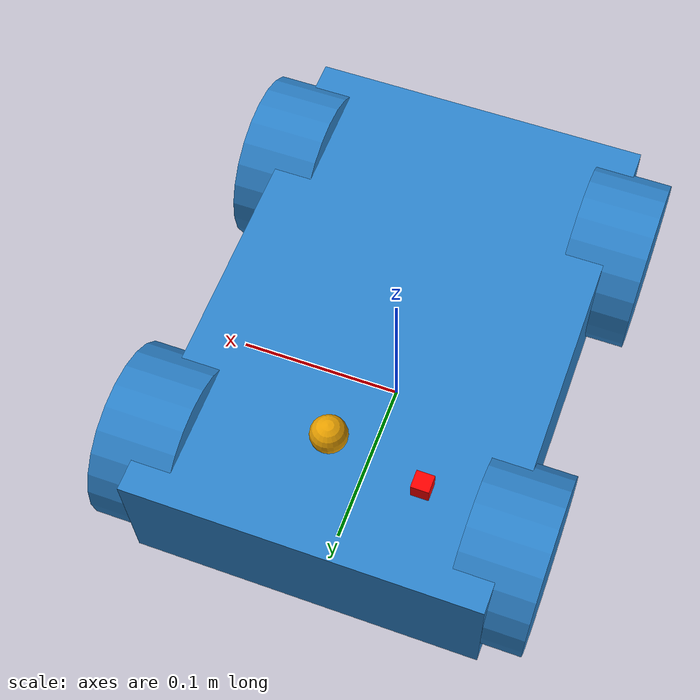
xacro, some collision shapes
<?xml version="1.0" encoding="UTF-8"?>
<robot xmlns:xacro="http://www.ros.org/wiki/xacro" name="rc_car_xacro">
	<include filename="$(find rc_car_simulation)/urdf/rc_car_gazebo.xacro"/>
	<include filename="$(find rc_car_simulation)/urdf/rc_car_constants_macros.xacro"/>
	<!--Base and chassis-->
	<link name="chassis"/>
	<link name="base_link">
		<visual>
			<geometry>
				<box size="0.2 .3 .075"/>
			</geometry>
			<origin rpy="0 0 0" xyz="0 0 0"/>
			<material name="blue">
				<color rgba="44 130 201 1"/>
			</material>
		</visual>
		<inertial>
			<origin xyz="0 0 0" rpy="0 0 0"/>
			<mass value="4.0"/>
			<inertia ixx="0.031875" ixy="0.0" ixz="0.0" iyy="0.015208" iyz="0.0" izz="0.04333"/>
		</inertial>
	</link>
	<joint name="base_link_joint" type="fixed">
		<origin xyz="0 0 0.06" rpy="0 0 0"/>
		<parent link="chassis"/>
		<child link="base_link"/>
	</joint>

	<!--Left front wheel -->
	<link name="left_front_wheel">
		<visual>
			<geometry>
				<cylinder length="${length_wheel}" radius="${radius_wheel}"/>
			</geometry>
			<origin rpy="0 0 0" xyz="0 0 0"/>
			<material name="blue"/>
		</visual>
		<collision>
			<origin xyz="0 0 0" rpy="0 0 0"/>
			<geometry>
				<cylinder length="${length_wheel}" radius="${radius_wheel}"/>
			</geometry>
		</collision>
		<inertial>
			<origin xyz="0 0 0" rpy="0 0 0"/>
			<mass value="0.34055"/>
			<inertia ixx="0.0004256875" ixy="0.0" ixz="0.0" iyy="0.0002128437" iyz="0.0" izz="0.0002128437"/>
		</inertial>
	</link>
	<joint name="chassis_to_left_front_wheel" type="continuous">
		<axis xyz="0 0 -1"/>
		<parent link="left_steering_hinge"/>
		<child link="left_front_wheel"/>
		<origin xyz="0 0 0" rpy="0 1.5708 0"/>
		<limit velocity="100.0" effort="10.0"/>
	</joint>
	<transmission name="trans1">
    		<type>transmission_interface/SimpleTransmission</type>
    		<joint name="chassis_to_left_front_wheel">
      			<hardwareInterface>EffortJointInterface</hardwareInterface>
    		</joint>
    		<actuator name="motor1">
      			<hardwareInterface>EffortJointInterface</hardwareInterface>
      			<mechanicalReduction>1</mechanicalReduction>
    		</actuator>
  	</transmission>

	<!--Left rear wheel -->
	<link name="left_rear_wheel">
		<visual>
			<geometry>
				<cylinder length="${length_wheel}" radius="${radius_wheel}"/>
			</geometry>
			<origin rpy="0 0 0" xyz="0 0 0" />
			<material name="blue"/>
		</visual>
		<collision>
			<origin xyz="0 0 0" rpy="0 0 0"/>
			<geometry>
				<cylinder length="${length_wheel}" radius="${radius_wheel}"/>
			</geometry>
		</collision>
		<inertial>
			<origin xyz="0 0 0" rpy="0 0 0"/>
			<mass value="0.34055"/>
			<inertia ixx="0.0004256875" ixy="0.0" ixz="0.0" iyy="0.0002128437" iyz="0.0" izz="0.0002128437"/>
		</inertial>
	</link>
	<joint name="chassis_to_left_rear_wheel" type="continuous">
		<axis xyz="0 0 -1"/>
		<parent link="base_link"/>
		<child link="left_rear_wheel"/>
		<origin xyz="-0.1 -0.1 0" rpy="0 1.5708 0"/>
		<dynamics damping="0.1" friction="0.5"/>
		<limit velocity="100.0" effort="10.0"/>
	</joint>
	<transmission name="trans2">
    		<type>transmission_interface/SimpleTransmission</type>
    		<joint name="chassis_to_left_rear_wheel">
      			<hardwareInterface>EffortJointInterface</hardwareInterface>
    		</joint>
    		<actuator name="motor2">
      			<hardwareInterface>EffortJointInterface</hardwareInterface>
      			<mechanicalReduction>1</mechanicalReduction>
    		</actuator>
  	</transmission>

	<!--Right front wheel-->
	<link name="right_front_wheel">
		<visual>
			<geometry>
				<cylinder length="${length_wheel}" radius="${radius_wheel}"/>
			</geometry>
			<origin rpy="0 0 0" xyz="0 0 0" />
			<material name="blue"/>
		</visual>
		<collision>
			<origin xyz="0 0 0" rpy="0 0 0"/>
			<geometry>
				<cylinder length="${length_wheel}" radius="${radius_wheel}"/>
			</geometry>
		</collision>
		<inertial>
			<origin xyz="0 0 0" rpy="0 0 0"/>
			<mass value="0.34055"/>
			<inertia ixx="0.0004256875" ixy="0.0" ixz="0.0" iyy="0.0002128437" iyz="0.0" izz="0.0002128437"/>
		</inertial>
	</link>
	<joint name="chassis_to_right_front_wheel" type="continuous">
		<axis xyz="0 0 -1"/>
		<parent link="right_steering_hinge"/>
		<child link="right_front_wheel"/>
		<origin xyz="0 0 0" rpy="0 1.5708 0"/>
		<dynamics damping="0.1" friction="0.5"/>
		<limit velocity="100.0" effort="10.0"/>
	</joint>
	<transmission name="trans3">
    		<type>transmission_interface/SimpleTransmission</type>
    		<joint name="chassis_to_right_front_wheel">
      			<hardwareInterface>EffortJointInterface</hardwareInterface>
    		</joint>
    		<actuator name="motor3">
      			<hardwareInterface>EffortJointInterface</hardwareInterface>
      			<mechanicalReduction>1</mechanicalReduction>
    		</actuator>
  	</transmission>

	<!--Right rear wheel-->
	<link name="right_rear_wheel">
		<visual>
			<geometry>
				<cylinder length="${length_wheel}" radius="${radius_wheel}"/>
			</geometry>
			<origin rpy="0 0 0" xyz="0 0 0" />
			<material name="blue"/>
		</visual>
		<collision>
			<origin xyz="0 0 0" rpy="0 0 0"/>
			<geometry>
				<cylinder length="${length_wheel}" radius="${radius_wheel}"/>
			</geometry>
		</collision>
		<inertial>
			<origin xyz="0 0 0" rpy="0 0 0"/>
			<mass value="0.34055"/>
			<inertia ixx="0.0004256875" ixy="0.0" ixz="0.0" iyy="0.0002128437" iyz="0.0" izz="0.0002128437"/>
		</inertial>
	</link>
	<joint name="chassis_to_right_rear_wheel" type="continuous">
		<axis xyz="0 0 -1"/>
		<parent link="base_link"/>
		<child link="right_rear_wheel"/>
		<origin xyz="0.1 -0.1 0" rpy="0 1.5708 0"/>
		<dynamics damping="0.1" friction="0.5"/>
		<limit velocity="100.0" effort="10.0"/>
	</joint>
	<transmission name="trans4">
    		<type>transmission_interface/SimpleTransmission</type>
    		<joint name="chassis_to_right_rear_wheel">
      			<hardwareInterface>EffortJointInterface</hardwareInterface>
    		</joint>
    		<actuator name="motor4">
      			<hardwareInterface>EffortJointInterface</hardwareInterface>
      			<mechanicalReduction>1</mechanicalReduction>
    		</actuator>
  	</transmission>
	<!--Left front wheel steering-->
	<link name="left_steering_hinge">
		<inertial>
			<origin xyz="0 0 0" rpy="0 0 0" />
  			<mass value="0.100" />
  			<inertia ixx="4E-06" ixy="0" ixz="0" iyy="4E-06" iyz="0" izz="4E-06" />
		</inertial>
		<visual>
			<xacro:steering_hinge_geometry/>
		</visual>
		<collision>
			<xacro:steering_hinge_geometry/>
		</collision>
	</link>
	<joint name="left_steering_hinge_joint" type="revolute">
		<origin xyz="-0.1 0.1 0" rpy="1.5708 0 0"/>
		<parent link="base_link"/>
		<child link="left_steering_hinge"/>
		<axis xyz="0 -1 0"/>
		<limit lower="-1.0" upper="1.0" effort="10" velocity="100"/>
	</joint>
	<transmission name="trans5" type="SimpleTransmission">
    		<type>transmission_interface/SimpleTransmission</type>
    		<joint name="left_steering_hinge_joint">
     			<hardwareInterface>EffortJointInterface</hardwareInterface>
    		</joint>
    		<actuator name="motor5">
      			<hardwareInterface>EffortJointInterface</hardwareInterface>
      			<mechanicalReduction>1</mechanicalReduction>
    		</actuator>
  	</transmission>
	<!--Right front wheel steering-->
	<link name="right_steering_hinge">
		<inertial>
			<origin xyz="0 0 0" rpy="0 0 0" />
  			<mass value="0.100" />
  			<inertia ixx="4E-06" ixy="0" ixz="0" iyy="4E-06" iyz="0" izz="4E-06" />
		</inertial>
		<visual>
			<xacro:steering_hinge_geometry/>
		</visual>
		<collision>
			<xacro:steering_hinge_geometry/>
		</collision>
	</link>
	<joint name="right_steering_hinge_joint" type="revolute">
		<origin xyz="0.1 0.1 0" rpy="1.5708 0 0"/>
		<parent link="base_link"/>
		<child link="right_steering_hinge"/>
		<axis xyz="0 -1 0"/>
		<limit lower="-1.0" upper="1.0" effort="10" velocity="100"/>
	</joint>
	<transmission name="trans6" type="SimpleTransmission">
    		<type>transmission_interface/SimpleTransmission</type>
    		<joint name="right_steering_hinge_joint">
     			<hardwareInterface>EffortJointInterface</hardwareInterface>
    		</joint>
    		<actuator name="motor6">
      			<hardwareInterface>EffortJointInterface</hardwareInterface>
      			<mechanicalReduction>1</mechanicalReduction>
    		</actuator>
  	</transmission>
	<!--Hokuyo lidar sensor-->
	<link name="hokuyo_link">
	    <collision>
	      		<xacro:steering_hinge_geometry/>
	    </collision>
	    <visual>
      		<origin xyz="0 0 0" rpy="0 0 0"/>
      		<geometry>
        		<mesh filename="package://rc_car_simulation/meshes/hokuyo.dae"/>
      		</geometry>
    	    </visual>
	    <inertial>
	      		<mass value="0.130" />
	      		<origin xyz="0 0 0" rpy="0 0 0"/>
	      		<inertia ixx="4e-6" ixy="0" ixz="0" iyy="4e-6" iyz="0" izz="4e-6" />
	    </inertial>
	</link>
	 <joint name="hokuyo_joint" type="fixed">
		<axis xyz="1 0 0"/>
		<origin xyz="0 0.1 0.075" rpy="0 0 1.5708"/>
    		<parent link="base_link"/>
    		<child link="hokuyo_link"/>
  	</joint>
	<!--IMU sensor -->
	<link name="imu_link">
		<inertial>
			<mass value="0.01"/>
			<origin rpy="0 0 0" xyz="0 0 0"/>
			<inertia ixx="0.0001" ixy="0.0" ixz="0.0" iyy="0.000001" iyz="0.0" izz="0.0001"/>
		</inertial>
		<visual>
			<origin rpy="0 0 0" xyz="0 0 0"/>
			<geometry>
				<box size="0.01 0.01 0.01"/>
			</geometry>
			<material name="red">
				<color rgba="255 0 0 0"/>
			</material>
		</visual>
		<collision>
			<origin rpy="0 0 0" xyz="0 0 0"/>
			<geometry>
				<box size="0.01 0.01 0.01"/>
			</geometry>
		</collision>
	</link>
	<joint name="imu_joint" type="fixed">
		<axis xyz="0 1 0"/>
		<origin xyz="-0.05 0.1 0.05"/>
		<parent link="base_link"/>
		<child link="imu_link"/>
	</joint>
</robot>

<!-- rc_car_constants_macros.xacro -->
<robot xmlns:xacro="http://www.ros.org/wiki/xacro">
	<xacro:property name="length_wheel" value="0.045"/>
	<xacro:property name="radius_wheel" value="0.05"/>
	<xacro:macro name="left_wheel_inertial" params="mass">
		<inertial>
			<origin xyz="0 0 0" rpy="0 0 0"/>
			<mass value="${mass}"/>
			<inertia ixx="0.0004256875" ixy="0.0" ixz="0.0" iyy="0.0002128437" iyz="0.0" izz="0.0002128437"/>
		</inertial>
	</xacro:macro>
	<xacro:macro name="right_wheel_inertial" params="mass">
		<inertial>
			<origin xyz="0 0 0" rpy="0 0 0"/>
			<mass value="${mass}"/>
			<inertia ixx="0.0004256875" ixy="0.0" ixz="0.0" iyy="0.0002128437" iyz="0.0" izz="0.0002128437"/>
		</inertial>
	</xacro:macro>
	<xacro:macro name="steering_hinge_inertial_params">
  		<origin xyz="0 0 0" rpy="0 0 0" />
  		<mass value="0.100" />
  		<inertia ixx="4E-06" ixy="0" ixz="0" iyy="4E-06" iyz="0" izz="4E-06" />
	</xacro:macro>
	<xacro:macro name="steering_hinge_geometry">
  		<origin xyz="0 0 0" rpy="0 0 0" />
  		<geometry>
    			<sphere radius="0.01"/>
  		</geometry>
	</xacro:macro>
</robot>
